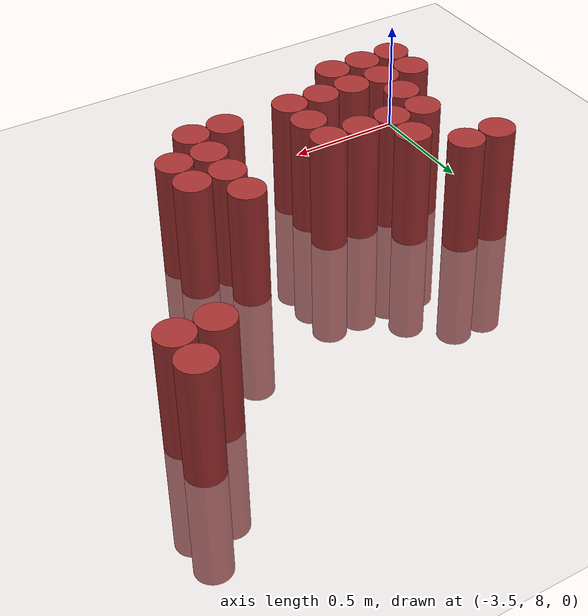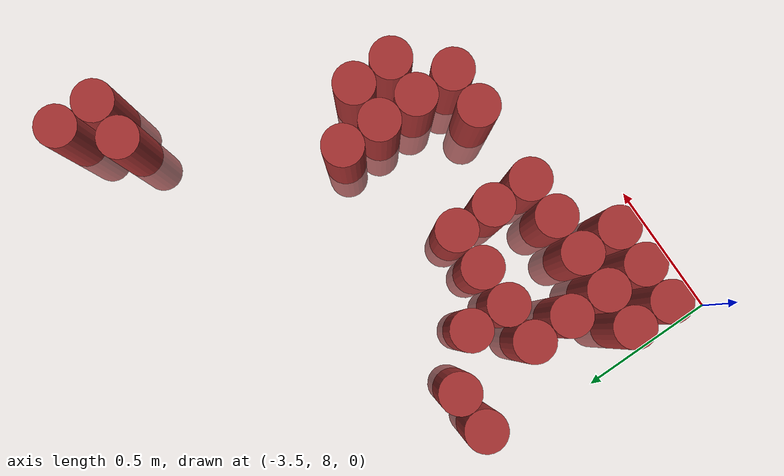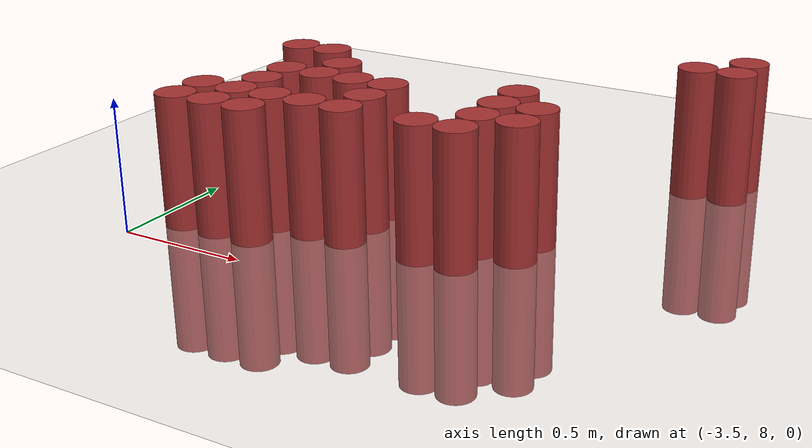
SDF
<sdf version="1.6">
 <world name="default">
  <model name="ground_plane">
   <static>1</static>
   <link name="link">
    <collision name="collision">
     <geometry><plane><normal>0 0 1</normal><size>100 100</size></plane></geometry>
     <surface><friction><ode><mu>100</mu><mu2>50</mu2></ode></friction></surface>
    </collision>
    <visual name="visual">
     <cast_shadows>0</cast_shadows>
     <geometry><plane><normal>0 0 1</normal><size>100 100</size></plane></geometry>
     <material>
      <script><uri>file://media/materials/scripts/gazebo.material</uri><name>Gazebo/Grey</name></script>
     </material>
    </visual>
   </link>
  </model>
  <model name="unit_cylinder_165">
   <static>1</static>
   <pose>-3.375000 8.175000 0.000000 0.000000 0.000000 0.000000</pose>
   <link name="link">
    <inertial>
     <mass>1</mass>
     <inertia><ixx>0.145833</ixx><ixy>0</ixy><ixz>0</ixz><iyy>0.145833</iyy><iyz>0</iyz><izz>0.125</izz></inertia>
    </inertial>
    <collision name="collision">
     <geometry><cylinder><radius>0.075000</radius><length>1</length></cylinder></geometry>
    </collision>
    <visual name="visual">
     <geometry><cylinder><radius>0.075000</radius><length>1</length></cylinder></geometry>
     <material>
      <ambient>0.648000 0.192000 0.192000 1</ambient>
      <diffuse>0.648000 0.192000 0.192000 1</diffuse>
     </material>
     <material>
      <script><name>Gazebo/Grey</name><uri>file://media/materials/scripts/gazebo.material</uri></script>
     </material>
    </visual>
   </link>
  </model>
  <model name="unit_cylinder_166">
   <static>1</static>
   <pose>-3.375000 8.325000 0.000000 0.000000 0.000000 0.000000</pose>
   <link name="link">
    <inertial>
     <mass>1</mass>
     <inertia><ixx>0.145833</ixx><ixy>0</ixy><ixz>0</ixz><iyy>0.145833</iyy><iyz>0</iyz><izz>0.125</izz></inertia>
    </inertial>
    <collision name="collision">
     <geometry><cylinder><radius>0.075000</radius><length>1</length></cylinder></geometry>
    </collision>
    <visual name="visual">
     <geometry><cylinder><radius>0.075000</radius><length>1</length></cylinder></geometry>
     <material>
      <ambient>0.648000 0.192000 0.192000 1</ambient>
      <diffuse>0.648000 0.192000 0.192000 1</diffuse>
     </material>
     <material>
      <script><name>Gazebo/Grey</name><uri>file://media/materials/scripts/gazebo.material</uri></script>
     </material>
    </visual>
   </link>
  </model>
  <model name="unit_cylinder_167">
   <static>1</static>
   <pose>-3.375000 8.925000 0.000000 0.000000 0.000000 0.000000</pose>
   <link name="link">
    <inertial>
     <mass>1</mass>
     <inertia><ixx>0.145833</ixx><ixy>0</ixy><ixz>0</ixz><iyy>0.145833</iyy><iyz>0</iyz><izz>0.125</izz></inertia>
    </inertial>
    <collision name="collision">
     <geometry><cylinder><radius>0.075000</radius><length>1</length></cylinder></geometry>
    </collision>
    <visual name="visual">
     <geometry><cylinder><radius>0.075000</radius><length>1</length></cylinder></geometry>
     <material>
      <ambient>0.648000 0.192000 0.192000 1</ambient>
      <diffuse>0.648000 0.192000 0.192000 1</diffuse>
     </material>
     <material>
      <script><name>Gazebo/Grey</name><uri>file://media/materials/scripts/gazebo.material</uri></script>
     </material>
    </visual>
   </link>
  </model>
  <model name="unit_cylinder_169">
   <static>1</static>
   <pose>-3.225000 8.175000 0.000000 0.000000 0.000000 0.000000</pose>
   <link name="link">
    <inertial>
     <mass>1</mass>
     <inertia><ixx>0.145833</ixx><ixy>0</ixy><ixz>0</ixz><iyy>0.145833</iyy><iyz>0</iyz><izz>0.125</izz></inertia>
    </inertial>
    <collision name="collision">
     <geometry><cylinder><radius>0.075000</radius><length>1</length></cylinder></geometry>
    </collision>
    <visual name="visual">
     <geometry><cylinder><radius>0.075000</radius><length>1</length></cylinder></geometry>
     <material>
      <ambient>0.648000 0.192000 0.192000 1</ambient>
      <diffuse>0.648000 0.192000 0.192000 1</diffuse>
     </material>
     <material>
      <script><name>Gazebo/Grey</name><uri>file://media/materials/scripts/gazebo.material</uri></script>
     </material>
    </visual>
   </link>
  </model>
  <model name="unit_cylinder_170">
   <static>1</static>
   <pose>-3.225000 8.325000 0.000000 0.000000 0.000000 0.000000</pose>
   <link name="link">
    <inertial>
     <mass>1</mass>
     <inertia><ixx>0.145833</ixx><ixy>0</ixy><ixz>0</ixz><iyy>0.145833</iyy><iyz>0</iyz><izz>0.125</izz></inertia>
    </inertial>
    <collision name="collision">
     <geometry><cylinder><radius>0.075000</radius><length>1</length></cylinder></geometry>
    </collision>
    <visual name="visual">
     <geometry><cylinder><radius>0.075000</radius><length>1</length></cylinder></geometry>
     <material>
      <ambient>0.648000 0.192000 0.192000 1</ambient>
      <diffuse>0.648000 0.192000 0.192000 1</diffuse>
     </material>
     <material>
      <script><name>Gazebo/Grey</name><uri>file://media/materials/scripts/gazebo.material</uri></script>
     </material>
    </visual>
   </link>
  </model>
  <model name="unit_cylinder_171">
   <static>1</static>
   <pose>-3.225000 8.475000 0.000000 0.000000 0.000000 0.000000</pose>
   <link name="link">
    <inertial>
     <mass>1</mass>
     <inertia><ixx>0.145833</ixx><ixy>0</ixy><ixz>0</ixz><iyy>0.145833</iyy><iyz>0</iyz><izz>0.125</izz></inertia>
    </inertial>
    <collision name="collision">
     <geometry><cylinder><radius>0.075000</radius><length>1</length></cylinder></geometry>
    </collision>
    <visual name="visual">
     <geometry><cylinder><radius>0.075000</radius><length>1</length></cylinder></geometry>
     <material>
      <ambient>0.648000 0.192000 0.192000 1</ambient>
      <diffuse>0.648000 0.192000 0.192000 1</diffuse>
     </material>
     <material>
      <script><name>Gazebo/Grey</name><uri>file://media/materials/scripts/gazebo.material</uri></script>
     </material>
    </visual>
   </link>
  </model>
  <model name="unit_cylinder_172">
   <static>1</static>
   <pose>-3.225000 8.625000 0.000000 0.000000 0.000000 0.000000</pose>
   <link name="link">
    <inertial>
     <mass>1</mass>
     <inertia><ixx>0.145833</ixx><ixy>0</ixy><ixz>0</ixz><iyy>0.145833</iyy><iyz>0</iyz><izz>0.125</izz></inertia>
    </inertial>
    <collision name="collision">
     <geometry><cylinder><radius>0.075000</radius><length>1</length></cylinder></geometry>
    </collision>
    <visual name="visual">
     <geometry><cylinder><radius>0.075000</radius><length>1</length></cylinder></geometry>
     <material>
      <ambient>0.648000 0.192000 0.192000 1</ambient>
      <diffuse>0.648000 0.192000 0.192000 1</diffuse>
     </material>
     <material>
      <script><name>Gazebo/Grey</name><uri>file://media/materials/scripts/gazebo.material</uri></script>
     </material>
    </visual>
   </link>
  </model>
  <model name="unit_cylinder_173">
   <static>1</static>
   <pose>-3.225000 8.925000 0.000000 0.000000 0.000000 0.000000</pose>
   <link name="link">
    <inertial>
     <mass>1</mass>
     <inertia><ixx>0.145833</ixx><ixy>0</ixy><ixz>0</ixz><iyy>0.145833</iyy><iyz>0</iyz><izz>0.125</izz></inertia>
    </inertial>
    <collision name="collision">
     <geometry><cylinder><radius>0.075000</radius><length>1</length></cylinder></geometry>
    </collision>
    <visual name="visual">
     <geometry><cylinder><radius>0.075000</radius><length>1</length></cylinder></geometry>
     <material>
      <ambient>0.648000 0.192000 0.192000 1</ambient>
      <diffuse>0.648000 0.192000 0.192000 1</diffuse>
     </material>
     <material>
      <script><name>Gazebo/Grey</name><uri>file://media/materials/scripts/gazebo.material</uri></script>
     </material>
    </visual>
   </link>
  </model>
  <model name="unit_cylinder_175">
   <static>1</static>
   <pose>-3.075000 8.175000 0.000000 0.000000 0.000000 0.000000</pose>
   <link name="link">
    <inertial>
     <mass>1</mass>
     <inertia><ixx>0.145833</ixx><ixy>0</ixy><ixz>0</ixz><iyy>0.145833</iyy><iyz>0</iyz><izz>0.125</izz></inertia>
    </inertial>
    <collision name="collision">
     <geometry><cylinder><radius>0.075000</radius><length>1</length></cylinder></geometry>
    </collision>
    <visual name="visual">
     <geometry><cylinder><radius>0.075000</radius><length>1</length></cylinder></geometry>
     <material>
      <ambient>0.648000 0.192000 0.192000 1</ambient>
      <diffuse>0.648000 0.192000 0.192000 1</diffuse>
     </material>
     <material>
      <script><name>Gazebo/Grey</name><uri>file://media/materials/scripts/gazebo.material</uri></script>
     </material>
    </visual>
   </link>
  </model>
  <model name="unit_cylinder_176">
   <static>1</static>
   <pose>-3.075000 8.325000 0.000000 0.000000 0.000000 0.000000</pose>
   <link name="link">
    <inertial>
     <mass>1</mass>
     <inertia><ixx>0.145833</ixx><ixy>0</ixy><ixz>0</ixz><iyy>0.145833</iyy><iyz>0</iyz><izz>0.125</izz></inertia>
    </inertial>
    <collision name="collision">
     <geometry><cylinder><radius>0.075000</radius><length>1</length></cylinder></geometry>
    </collision>
    <visual name="visual">
     <geometry><cylinder><radius>0.075000</radius><length>1</length></cylinder></geometry>
     <material>
      <ambient>0.648000 0.192000 0.192000 1</ambient>
      <diffuse>0.648000 0.192000 0.192000 1</diffuse>
     </material>
     <material>
      <script><name>Gazebo/Grey</name><uri>file://media/materials/scripts/gazebo.material</uri></script>
     </material>
    </visual>
   </link>
  </model>
  <model name="unit_cylinder_177">
   <static>1</static>
   <pose>-3.075000 8.625000 0.000000 0.000000 0.000000 0.000000</pose>
   <link name="link">
    <inertial>
     <mass>1</mass>
     <inertia><ixx>0.145833</ixx><ixy>0</ixy><ixz>0</ixz><iyy>0.145833</iyy><iyz>0</iyz><izz>0.125</izz></inertia>
    </inertial>
    <collision name="collision">
     <geometry><cylinder><radius>0.075000</radius><length>1</length></cylinder></geometry>
    </collision>
    <visual name="visual">
     <geometry><cylinder><radius>0.075000</radius><length>1</length></cylinder></geometry>
     <material>
      <ambient>0.648000 0.192000 0.192000 1</ambient>
      <diffuse>0.648000 0.192000 0.192000 1</diffuse>
     </material>
     <material>
      <script><name>Gazebo/Grey</name><uri>file://media/materials/scripts/gazebo.material</uri></script>
     </material>
    </visual>
   </link>
  </model>
  <model name="unit_cylinder_178">
   <static>1</static>
   <pose>-3.075000 8.775000 0.000000 0.000000 0.000000 0.000000</pose>
   <link name="link">
    <inertial>
     <mass>1</mass>
     <inertia><ixx>0.145833</ixx><ixy>0</ixy><ixz>0</ixz><iyy>0.145833</iyy><iyz>0</iyz><izz>0.125</izz></inertia>
    </inertial>
    <collision name="collision">
     <geometry><cylinder><radius>0.075000</radius><length>1</length></cylinder></geometry>
    </collision>
    <visual name="visual">
     <geometry><cylinder><radius>0.075000</radius><length>1</length></cylinder></geometry>
     <material>
      <ambient>0.648000 0.192000 0.192000 1</ambient>
      <diffuse>0.648000 0.192000 0.192000 1</diffuse>
     </material>
     <material>
      <script><name>Gazebo/Grey</name><uri>file://media/materials/scripts/gazebo.material</uri></script>
     </material>
    </visual>
   </link>
  </model>
  <model name="unit_cylinder_183">
   <static>1</static>
   <pose>-2.925000 8.325000 0.000000 0.000000 0.000000 0.000000</pose>
   <link name="link">
    <inertial>
     <mass>1</mass>
     <inertia><ixx>0.145833</ixx><ixy>0</ixy><ixz>0</ixz><iyy>0.145833</iyy><iyz>0</iyz><izz>0.125</izz></inertia>
    </inertial>
    <collision name="collision">
     <geometry><cylinder><radius>0.075000</radius><length>1</length></cylinder></geometry>
    </collision>
    <visual name="visual">
     <geometry><cylinder><radius>0.075000</radius><length>1</length></cylinder></geometry>
     <material>
      <ambient>0.648000 0.192000 0.192000 1</ambient>
      <diffuse>0.648000 0.192000 0.192000 1</diffuse>
     </material>
     <material>
      <script><name>Gazebo/Grey</name><uri>file://media/materials/scripts/gazebo.material</uri></script>
     </material>
    </visual>
   </link>
  </model>
  <model name="unit_cylinder_184">
   <static>1</static>
   <pose>-2.925000 8.625000 0.000000 0.000000 0.000000 0.000000</pose>
   <link name="link">
    <inertial>
     <mass>1</mass>
     <inertia><ixx>0.145833</ixx><ixy>0</ixy><ixz>0</ixz><iyy>0.145833</iyy><iyz>0</iyz><izz>0.125</izz></inertia>
    </inertial>
    <collision name="collision">
     <geometry><cylinder><radius>0.075000</radius><length>1</length></cylinder></geometry>
    </collision>
    <visual name="visual">
     <geometry><cylinder><radius>0.075000</radius><length>1</length></cylinder></geometry>
     <material>
      <ambient>0.648000 0.192000 0.192000 1</ambient>
      <diffuse>0.648000 0.192000 0.192000 1</diffuse>
     </material>
     <material>
      <script><name>Gazebo/Grey</name><uri>file://media/materials/scripts/gazebo.material</uri></script>
     </material>
    </visual>
   </link>
  </model>
  <model name="unit_cylinder_187">
   <static>1</static>
   <pose>-2.775000 8.325000 0.000000 0.000000 0.000000 0.000000</pose>
   <link name="link">
    <inertial>
     <mass>1</mass>
     <inertia><ixx>0.145833</ixx><ixy>0</ixy><ixz>0</ixz><iyy>0.145833</iyy><iyz>0</iyz><izz>0.125</izz></inertia>
    </inertial>
    <collision name="collision">
     <geometry><cylinder><radius>0.075000</radius><length>1</length></cylinder></geometry>
    </collision>
    <visual name="visual">
     <geometry><cylinder><radius>0.075000</radius><length>1</length></cylinder></geometry>
     <material>
      <ambient>0.648000 0.192000 0.192000 1</ambient>
      <diffuse>0.648000 0.192000 0.192000 1</diffuse>
     </material>
     <material>
      <script><name>Gazebo/Grey</name><uri>file://media/materials/scripts/gazebo.material</uri></script>
     </material>
    </visual>
   </link>
  </model>
  <model name="unit_cylinder_188">
   <static>1</static>
   <pose>-2.775000 8.475000 0.000000 0.000000 0.000000 0.000000</pose>
   <link name="link">
    <inertial>
     <mass>1</mass>
     <inertia><ixx>0.145833</ixx><ixy>0</ixy><ixz>0</ixz><iyy>0.145833</iyy><iyz>0</iyz><izz>0.125</izz></inertia>
    </inertial>
    <collision name="collision">
     <geometry><cylinder><radius>0.075000</radius><length>1</length></cylinder></geometry>
    </collision>
    <visual name="visual">
     <geometry><cylinder><radius>0.075000</radius><length>1</length></cylinder></geometry>
     <material>
      <ambient>0.648000 0.192000 0.192000 1</ambient>
      <diffuse>0.648000 0.192000 0.192000 1</diffuse>
     </material>
     <material>
      <script><name>Gazebo/Grey</name><uri>file://media/materials/scripts/gazebo.material</uri></script>
     </material>
    </visual>
   </link>
  </model>
  <model name="unit_cylinder_189">
   <static>1</static>
   <pose>-2.775000 8.625000 0.000000 0.000000 0.000000 0.000000</pose>
   <link name="link">
    <inertial>
     <mass>1</mass>
     <inertia><ixx>0.145833</ixx><ixy>0</ixy><ixz>0</ixz><iyy>0.145833</iyy><iyz>0</iyz><izz>0.125</izz></inertia>
    </inertial>
    <collision name="collision">
     <geometry><cylinder><radius>0.075000</radius><length>1</length></cylinder></geometry>
    </collision>
    <visual name="visual">
     <geometry><cylinder><radius>0.075000</radius><length>1</length></cylinder></geometry>
     <material>
      <ambient>0.648000 0.192000 0.192000 1</ambient>
      <diffuse>0.648000 0.192000 0.192000 1</diffuse>
     </material>
     <material>
      <script><name>Gazebo/Grey</name><uri>file://media/materials/scripts/gazebo.material</uri></script>
     </material>
    </visual>
   </link>
  </model>
  <model name="unit_cylinder_191">
   <static>1</static>
   <pose>-2.475000 8.325000 0.000000 0.000000 0.000000 0.000000</pose>
   <link name="link">
    <inertial>
     <mass>1</mass>
     <inertia><ixx>0.145833</ixx><ixy>0</ixy><ixz>0</ixz><iyy>0.145833</iyy><iyz>0</iyz><izz>0.125</izz></inertia>
    </inertial>
    <collision name="collision">
     <geometry><cylinder><radius>0.075000</radius><length>1</length></cylinder></geometry>
    </collision>
    <visual name="visual">
     <geometry><cylinder><radius>0.075000</radius><length>1</length></cylinder></geometry>
     <material>
      <ambient>0.648000 0.192000 0.192000 1</ambient>
      <diffuse>0.648000 0.192000 0.192000 1</diffuse>
     </material>
     <material>
      <script><name>Gazebo/Grey</name><uri>file://media/materials/scripts/gazebo.material</uri></script>
     </material>
    </visual>
   </link>
  </model>
  <model name="unit_cylinder_194">
   <static>1</static>
   <pose>-2.325000 8.325000 0.000000 0.000000 0.000000 0.000000</pose>
   <link name="link">
    <inertial>
     <mass>1</mass>
     <inertia><ixx>0.145833</ixx><ixy>0</ixy><ixz>0</ixz><iyy>0.145833</iyy><iyz>0</iyz><izz>0.125</izz></inertia>
    </inertial>
    <collision name="collision">
     <geometry><cylinder><radius>0.075000</radius><length>1</length></cylinder></geometry>
    </collision>
    <visual name="visual">
     <geometry><cylinder><radius>0.075000</radius><length>1</length></cylinder></geometry>
     <material>
      <ambient>0.648000 0.192000 0.192000 1</ambient>
      <diffuse>0.648000 0.192000 0.192000 1</diffuse>
     </material>
     <material>
      <script><name>Gazebo/Grey</name><uri>file://media/materials/scripts/gazebo.material</uri></script>
     </material>
    </visual>
   </link>
  </model>
  <model name="unit_cylinder_195">
   <static>1</static>
   <pose>-2.325000 8.475000 0.000000 0.000000 0.000000 0.000000</pose>
   <link name="link">
    <inertial>
     <mass>1</mass>
     <inertia><ixx>0.145833</ixx><ixy>0</ixy><ixz>0</ixz><iyy>0.145833</iyy><iyz>0</iyz><izz>0.125</izz></inertia>
    </inertial>
    <collision name="collision">
     <geometry><cylinder><radius>0.075000</radius><length>1</length></cylinder></geometry>
    </collision>
    <visual name="visual">
     <geometry><cylinder><radius>0.075000</radius><length>1</length></cylinder></geometry>
     <material>
      <ambient>0.648000 0.192000 0.192000 1</ambient>
      <diffuse>0.648000 0.192000 0.192000 1</diffuse>
     </material>
     <material>
      <script><name>Gazebo/Grey</name><uri>file://media/materials/scripts/gazebo.material</uri></script>
     </material>
    </visual>
   </link>
  </model>
  <model name="unit_cylinder_196">
   <static>1</static>
   <pose>-2.325000 8.625000 0.000000 0.000000 0.000000 0.000000</pose>
   <link name="link">
    <inertial>
     <mass>1</mass>
     <inertia><ixx>0.145833</ixx><ixy>0</ixy><ixz>0</ixz><iyy>0.145833</iyy><iyz>0</iyz><izz>0.125</izz></inertia>
    </inertial>
    <collision name="collision">
     <geometry><cylinder><radius>0.075000</radius><length>1</length></cylinder></geometry>
    </collision>
    <visual name="visual">
     <geometry><cylinder><radius>0.075000</radius><length>1</length></cylinder></geometry>
     <material>
      <ambient>0.648000 0.192000 0.192000 1</ambient>
      <diffuse>0.648000 0.192000 0.192000 1</diffuse>
     </material>
     <material>
      <script><name>Gazebo/Grey</name><uri>file://media/materials/scripts/gazebo.material</uri></script>
     </material>
    </visual>
   </link>
  </model>
  <model name="unit_cylinder_197">
   <static>1</static>
   <pose>-2.325000 8.775000 0.000000 0.000000 0.000000 0.000000</pose>
   <link name="link">
    <inertial>
     <mass>1</mass>
     <inertia><ixx>0.145833</ixx><ixy>0</ixy><ixz>0</ixz><iyy>0.145833</iyy><iyz>0</iyz><izz>0.125</izz></inertia>
    </inertial>
    <collision name="collision">
     <geometry><cylinder><radius>0.075000</radius><length>1</length></cylinder></geometry>
    </collision>
    <visual name="visual">
     <geometry><cylinder><radius>0.075000</radius><length>1</length></cylinder></geometry>
     <material>
      <ambient>0.648000 0.192000 0.192000 1</ambient>
      <diffuse>0.648000 0.192000 0.192000 1</diffuse>
     </material>
     <material>
      <script><name>Gazebo/Grey</name><uri>file://media/materials/scripts/gazebo.material</uri></script>
     </material>
    </visual>
   </link>
  </model>
  <model name="unit_cylinder_199">
   <static>1</static>
   <pose>-2.175000 8.475000 0.000000 0.000000 0.000000 0.000000</pose>
   <link name="link">
    <inertial>
     <mass>1</mass>
     <inertia><ixx>0.145833</ixx><ixy>0</ixy><ixz>0</ixz><iyy>0.145833</iyy><iyz>0</iyz><izz>0.125</izz></inertia>
    </inertial>
    <collision name="collision">
     <geometry><cylinder><radius>0.075000</radius><length>1</length></cylinder></geometry>
    </collision>
    <visual name="visual">
     <geometry><cylinder><radius>0.075000</radius><length>1</length></cylinder></geometry>
     <material>
      <ambient>0.648000 0.192000 0.192000 1</ambient>
      <diffuse>0.648000 0.192000 0.192000 1</diffuse>
     </material>
     <material>
      <script><name>Gazebo/Grey</name><uri>file://media/materials/scripts/gazebo.material</uri></script>
     </material>
    </visual>
   </link>
  </model>
  <model name="unit_cylinder_200">
   <static>1</static>
   <pose>-2.175000 8.625000 0.000000 0.000000 0.000000 0.000000</pose>
   <link name="link">
    <inertial>
     <mass>1</mass>
     <inertia><ixx>0.145833</ixx><ixy>0</ixy><ixz>0</ixz><iyy>0.145833</iyy><iyz>0</iyz><izz>0.125</izz></inertia>
    </inertial>
    <collision name="collision">
     <geometry><cylinder><radius>0.075000</radius><length>1</length></cylinder></geometry>
    </collision>
    <visual name="visual">
     <geometry><cylinder><radius>0.075000</radius><length>1</length></cylinder></geometry>
     <material>
      <ambient>0.648000 0.192000 0.192000 1</ambient>
      <diffuse>0.648000 0.192000 0.192000 1</diffuse>
     </material>
     <material>
      <script><name>Gazebo/Grey</name><uri>file://media/materials/scripts/gazebo.material</uri></script>
     </material>
    </visual>
   </link>
  </model>
  <model name="unit_cylinder_205">
   <static>1</static>
   <pose>-1.875000 9.375000 0.000000 0.000000 0.000000 0.000000</pose>
   <link name="link">
    <inertial>
     <mass>1</mass>
     <inertia><ixx>0.145833</ixx><ixy>0</ixy><ixz>0</ixz><iyy>0.145833</iyy><iyz>0</iyz><izz>0.125</izz></inertia>
    </inertial>
    <collision name="collision">
     <geometry><cylinder><radius>0.075000</radius><length>1</length></cylinder></geometry>
    </collision>
    <visual name="visual">
     <geometry><cylinder><radius>0.075000</radius><length>1</length></cylinder></geometry>
     <material>
      <ambient>0.648000 0.192000 0.192000 1</ambient>
      <diffuse>0.648000 0.192000 0.192000 1</diffuse>
     </material>
     <material>
      <script><name>Gazebo/Grey</name><uri>file://media/materials/scripts/gazebo.material</uri></script>
     </material>
    </visual>
   </link>
  </model>
  <model name="unit_cylinder_206">
   <static>1</static>
   <pose>-1.725000 9.375000 0.000000 0.000000 0.000000 0.000000</pose>
   <link name="link">
    <inertial>
     <mass>1</mass>
     <inertia><ixx>0.145833</ixx><ixy>0</ixy><ixz>0</ixz><iyy>0.145833</iyy><iyz>0</iyz><izz>0.125</izz></inertia>
    </inertial>
    <collision name="collision">
     <geometry><cylinder><radius>0.075000</radius><length>1</length></cylinder></geometry>
    </collision>
    <visual name="visual">
     <geometry><cylinder><radius>0.075000</radius><length>1</length></cylinder></geometry>
     <material>
      <ambient>0.648000 0.192000 0.192000 1</ambient>
      <diffuse>0.648000 0.192000 0.192000 1</diffuse>
     </material>
     <material>
      <script><name>Gazebo/Grey</name><uri>file://media/materials/scripts/gazebo.material</uri></script>
     </material>
    </visual>
   </link>
  </model>
  <model name="unit_cylinder_207">
   <static>1</static>
   <pose>-1.725000 9.525000 0.000000 0.000000 0.000000 0.000000</pose>
   <link name="link">
    <inertial>
     <mass>1</mass>
     <inertia><ixx>0.145833</ixx><ixy>0</ixy><ixz>0</ixz><iyy>0.145833</iyy><iyz>0</iyz><izz>0.125</izz></inertia>
    </inertial>
    <collision name="collision">
     <geometry><cylinder><radius>0.075000</radius><length>1</length></cylinder></geometry>
    </collision>
    <visual name="visual">
     <geometry><cylinder><radius>0.075000</radius><length>1</length></cylinder></geometry>
     <material>
      <ambient>0.648000 0.192000 0.192000 1</ambient>
      <diffuse>0.648000 0.192000 0.192000 1</diffuse>
     </material>
     <material>
      <script><name>Gazebo/Grey</name><uri>file://media/materials/scripts/gazebo.material</uri></script>
     </material>
    </visual>
   </link>
  </model>
 </world>
</sdf>
